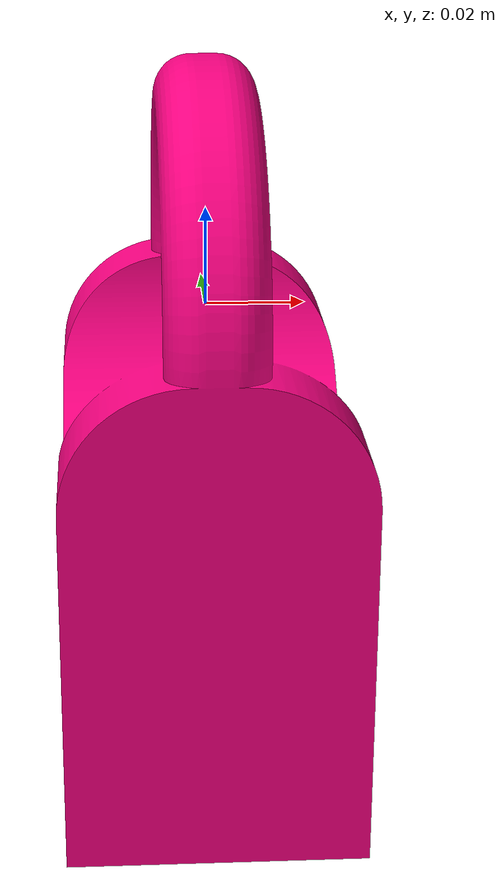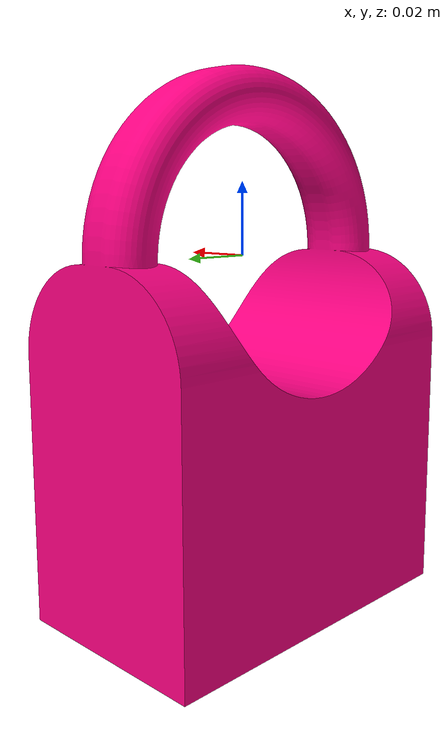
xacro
<?xml version="1.0" ?>
<robot name="mini_bag" xmlns:xacro="http://www.ros.org/wiki/xacro">

<xacro:include filename="$(find mini_bag_description)/urdf/materials.xacro" />
<xacro:include filename="$(find mini_bag_description)/urdf/mini_bag.trans" />
<xacro:include filename="$(find mini_bag_description)/urdf/mini_bag.gazebo" />
<link name="base_link">
  <inertial>
    <origin xyz="1.4036080603994642e-07 7.145997015398273e-09 -0.053595624254287336" rpy="0 0 0"/>
    <mass value="4.001168387523481"/>
    <inertia ixx="0.007943" iyy="0.005276" izz="0.004879" ixy="0.0" iyz="-0.0" ixz="-0.0"/>
  </inertial>
  <visual>
    <origin xyz="0 0 0" rpy="0 0 0"/>
    <geometry>
      <mesh filename="package://mini_bag_description/meshes/base_link.stl" scale="0.001 0.001 0.001"/>
    </geometry>
    <material name="pink">
        <color rgba="255 0 132 1" />
    </material>
  </visual>
  <collision concave="yes">
    <origin xyz="0 0 0" rpy="0 0 0"/>
    <geometry>
      <mesh filename="package://mini_bag_description/meshes/base_link.stl" scale="0.001 0.001 0.001"/>
    </geometry>
  </collision>
</link>

</robot>

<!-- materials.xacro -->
<robot name="mini_bag" xmlns:xacro="http://www.ros.org/wiki/xacro" >

<material name="silver">
  <color rgba="0.700 0.700 0.700 1.000"/>
</material>

</robot>

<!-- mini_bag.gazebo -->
<robot name="mini_bag" xmlns:xacro="http://www.ros.org/wiki/xacro" >

<xacro:property name="body_color" value="Gazebo/Silver" />

<gazebo>
  <plugin name="control" filename="libgazebo_ros_control.so"/>
</gazebo>
<gazebo reference="base_link">
  <material>${body_color}</material>
  <mu1>0.2</mu1>
  <mu2>0.2</mu2>
  <selfCollide>true</selfCollide>
  <gravity>true</gravity>
</gazebo>

</robot>
